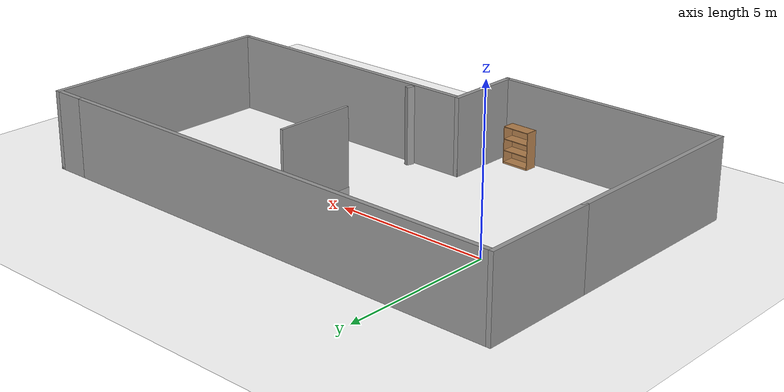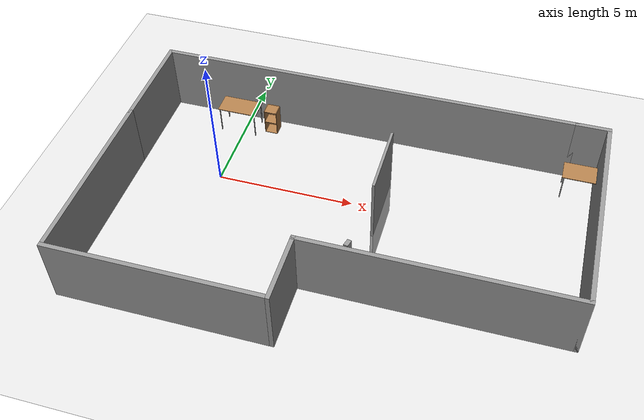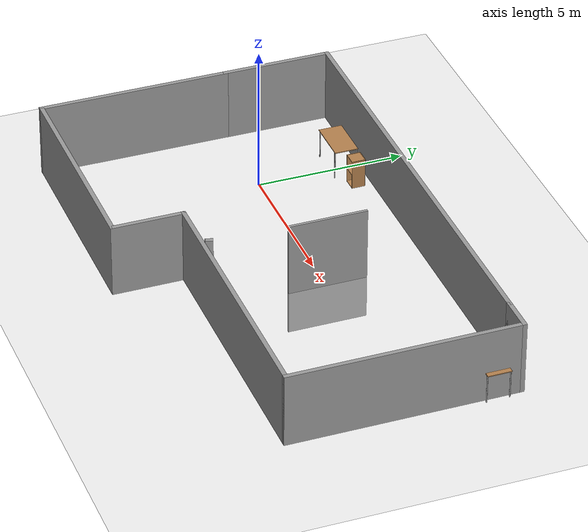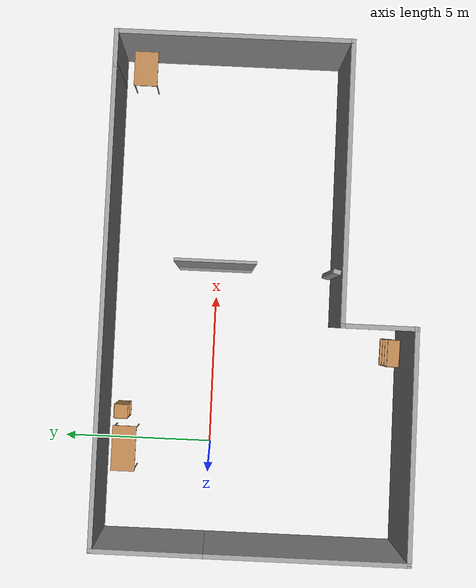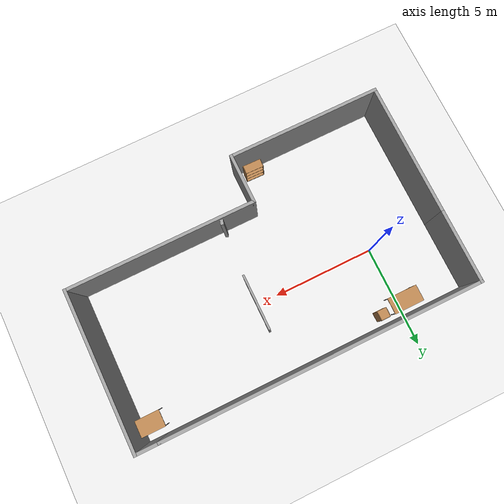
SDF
<sdf version="1.7">
 <world name="default">
  <light name="sun" type="directional">
   <pose>0 0 10 0 -0 0</pose>
   <diffuse>0.8 0.8 0.8 1</diffuse>
   <specular>0.2 0.2 0.2 1</specular>
   <attenuation>
    <range>1000</range>
    <constant>0.9</constant>
    <linear>0.01</linear>
    <quadratic>0.001</quadratic>
   </attenuation>
   <direction>-0.5 0.1 -0.9</direction>
   <spot><inner_angle>0</inner_angle><outer_angle>0</outer_angle><falloff>0</falloff></spot>
  </light>
  <model name="ground_plane">
   <static>1</static>
   <link name="link">
    <collision name="collision">
     <geometry><plane><normal>0 0 1</normal><size>100 100</size></plane></geometry>
     <surface><friction><ode><mu>100</mu><mu2>50</mu2></ode></friction></surface>
    </collision>
    <visual name="visual">
     <cast_shadows>0</cast_shadows>
     <geometry><plane><normal>0 0 1</normal><size>100 100</size></plane></geometry>
     <material>
      <script><uri>file://media/materials/scripts/gazebo.material</uri><name>Gazebo/Grey</name></script>
     </material>
    </visual>
   </link>
  </model>
  <gravity>0 0 -9.8</gravity>
  <magnetic_field>6e-06 2.3e-05 -4.2e-05</magnetic_field>
  <atmosphere type="adiabatic"/>
  <physics type="ode">
   <max_step_size>0.001</max_step_size>
   <real_time_factor>1</real_time_factor>
   <real_time_update_rate>1000</real_time_update_rate>
  </physics>
  <scene><ambient>0.4 0.4 0.4 1</ambient><background>0.7 0.7 0.7 1</background><shadows>1</shadows></scene>
  <audio><device>default</device></audio>
  <spherical_coordinates>
   <surface_model>EARTH_WGS84</surface_model>
   <latitude_deg>0</latitude_deg>
   <longitude_deg>0</longitude_deg>
   <elevation>0</elevation>
   <heading_deg>0</heading_deg>
  </spherical_coordinates>
  <model name="table">
   <static>1</static>
   <link name="link">
    <collision name="surface">
     <pose>0 0 1 0 -0 0</pose>
     <geometry><box><size>1.5 0.8 0.03</size></box></geometry>
     <surface><friction><ode><mu>0.6</mu><mu2>0.6</mu2></ode></friction></surface>
    </collision>
    <visual name="visual1">
     <pose>0 0 1 0 -0 0</pose>
     <geometry><box><size>1.5 0.8 0.03</size></box></geometry>
     <material>
      <script><uri>file://media/materials/scripts/gazebo.material</uri><name>Gazebo/Wood</name></script>
     </material>
    </visual>
    <collision name="front_left_leg">
     <pose>0.68 0.38 0.5 0 -0 0</pose>
     <geometry><cylinder><radius>0.02</radius><length>1</length></cylinder></geometry>
    </collision>
    <visual name="front_left_leg">
     <pose>0.68 0.38 0.5 0 -0 0</pose>
     <geometry><cylinder><radius>0.02</radius><length>1</length></cylinder></geometry>
     <material>
      <script><uri>file://media/materials/scripts/gazebo.material</uri><name>Gazebo/Grey</name></script>
     </material>
    </visual>
    <collision name="front_right_leg">
     <pose>0.68 -0.38 0.5 0 -0 0</pose>
     <geometry><cylinder><radius>0.02</radius><length>1</length></cylinder></geometry>
    </collision>
    <visual name="front_right_leg">
     <pose>0.68 -0.38 0.5 0 -0 0</pose>
     <geometry><cylinder><radius>0.02</radius><length>1</length></cylinder></geometry>
     <material>
      <script><uri>file://media/materials/scripts/gazebo.material</uri><name>Gazebo/Grey</name></script>
     </material>
    </visual>
    <collision name="back_right_leg">
     <pose>-0.68 -0.38 0.5 0 -0 0</pose>
     <geometry><cylinder><radius>0.02</radius><length>1</length></cylinder></geometry>
    </collision>
    <visual name="back_right_leg">
     <pose>-0.68 -0.38 0.5 0 -0 0</pose>
     <geometry><cylinder><radius>0.02</radius><length>1</length></cylinder></geometry>
     <material>
      <script><uri>file://media/materials/scripts/gazebo.material</uri><name>Gazebo/Grey</name></script>
     </material>
    </visual>
    <collision name="back_left_leg">
     <pose>-0.68 0.38 0.5 0 -0 0</pose>
     <geometry><cylinder><radius>0.02</radius><length>1</length></cylinder></geometry>
    </collision>
    <visual name="back_left_leg">
     <pose>-0.68 0.38 0.5 0 -0 0</pose>
     <geometry><cylinder><radius>0.02</radius><length>1</length></cylinder></geometry>
     <material>
      <script><uri>file://media/materials/scripts/gazebo.material</uri><name>Gazebo/Grey</name></script>
     </material>
    </visual>
   </link>
   <pose>-0.208377 2.85847 0 0 -0 0</pose>
  </model>
  <model name="table_1">
   <static>1</static>
   <link name="link">
    <collision name="surface">
     <pose>0 0 1 0 -0 0</pose>
     <geometry><box><size>1.5 0.8 0.03</size></box></geometry>
     <surface><friction><ode><mu>0.6</mu><mu2>0.6</mu2></ode></friction></surface>
    </collision>
    <visual name="visual1">
     <pose>0 0 1 0 -0 0</pose>
     <geometry><box><size>1.5 0.8 0.03</size></box></geometry>
     <material>
      <script><uri>file://media/materials/scripts/gazebo.material</uri><name>Gazebo/Wood</name></script>
     </material>
    </visual>
    <collision name="front_left_leg">
     <pose>0.68 0.38 0.5 0 -0 0</pose>
     <geometry><cylinder><radius>0.02</radius><length>1</length></cylinder></geometry>
    </collision>
    <visual name="front_left_leg">
     <pose>0.68 0.38 0.5 0 -0 0</pose>
     <geometry><cylinder><radius>0.02</radius><length>1</length></cylinder></geometry>
     <material>
      <script><uri>file://media/materials/scripts/gazebo.material</uri><name>Gazebo/Grey</name></script>
     </material>
    </visual>
    <collision name="front_right_leg">
     <pose>0.68 -0.38 0.5 0 -0 0</pose>
     <geometry><cylinder><radius>0.02</radius><length>1</length></cylinder></geometry>
    </collision>
    <visual name="front_right_leg">
     <pose>0.68 -0.38 0.5 0 -0 0</pose>
     <geometry><cylinder><radius>0.02</radius><length>1</length></cylinder></geometry>
     <material>
      <script><uri>file://media/materials/scripts/gazebo.material</uri><name>Gazebo/Grey</name></script>
     </material>
    </visual>
    <collision name="back_right_leg">
     <pose>-0.68 -0.38 0.5 0 -0 0</pose>
     <geometry><cylinder><radius>0.02</radius><length>1</length></cylinder></geometry>
    </collision>
    <visual name="back_right_leg">
     <pose>-0.68 -0.38 0.5 0 -0 0</pose>
     <geometry><cylinder><radius>0.02</radius><length>1</length></cylinder></geometry>
     <material>
      <script><uri>file://media/materials/scripts/gazebo.material</uri><name>Gazebo/Grey</name></script>
     </material>
    </visual>
    <collision name="back_left_leg">
     <pose>-0.68 0.38 0.5 0 -0 0</pose>
     <geometry><cylinder><radius>0.02</radius><length>1</length></cylinder></geometry>
    </collision>
    <visual name="back_left_leg">
     <pose>-0.68 0.38 0.5 0 -0 0</pose>
     <geometry><cylinder><radius>0.02</radius><length>1</length></cylinder></geometry>
     <material>
      <script><uri>file://media/materials/scripts/gazebo.material</uri><name>Gazebo/Grey</name></script>
     </material>
    </visual>
   </link>
   <pose>12.7962 2.74013 0 0 -0 0</pose>
  </model>
  <model name="bookshelf">
   <static>1</static>
   <link name="link">
    <inertial><mass>1</mass></inertial>
    <collision name="back">
     <pose>0 0.005 0.6 0 -0 0</pose>
     <geometry><box><size>0.9 0.01 1.2</size></box></geometry>
    </collision>
    <visual name="visual1">
     <pose>0 0.005 0.6 0 -0 0</pose>
     <geometry><box><size>0.9 0.01 1.2</size></box></geometry>
     <material>
      <script><uri>file://media/materials/scripts/gazebo.material</uri><name>Gazebo/Wood</name></script>
     </material>
    </visual>
    <collision name="left_side">
     <pose>0.45 -0.195 0.6 0 -0 0</pose>
     <geometry><box><size>0.02 0.4 1.2</size></box></geometry>
    </collision>
    <visual name="visual2">
     <pose>0.45 -0.195 0.6 0 -0 0</pose>
     <geometry><box><size>0.02 0.4 1.2</size></box></geometry>
     <material>
      <script><uri>file://media/materials/scripts/gazebo.material</uri><name>Gazebo/Wood</name></script>
     </material>
    </visual>
    <collision name="right_side">
     <pose>-0.45 -0.195 0.6 0 -0 0</pose>
     <geometry><box><size>0.02 0.4 1.2</size></box></geometry>
    </collision>
    <visual name="visual3">
     <pose>-0.45 -0.195 0.6 0 -0 0</pose>
     <geometry><box><size>0.02 0.4 1.2</size></box></geometry>
     <material>
      <script><uri>file://media/materials/scripts/gazebo.material</uri><name>Gazebo/Wood</name></script>
     </material>
    </visual>
    <collision name="bottom">
     <pose>0 -0.195 0.03 0 -0 0</pose>
     <geometry><box><size>0.88 0.4 0.06</size></box></geometry>
    </collision>
    <visual name="visual4">
     <pose>0 -0.195 0.03 0 -0 0</pose>
     <geometry><box><size>0.88 0.4 0.06</size></box></geometry>
     <material>
      <script><uri>file://media/materials/scripts/gazebo.material</uri><name>Gazebo/Wood</name></script>
     </material>
    </visual>
    <collision name="top">
     <pose>0 -0.195 1.19 0 -0 0</pose>
     <geometry><box><size>0.88 0.4 0.02</size></box></geometry>
    </collision>
    <visual name="visual5">
     <pose>0 -0.195 1.19 0 -0 0</pose>
     <geometry><box><size>0.88 0.4 0.02</size></box></geometry>
     <material>
      <script><uri>file://media/materials/scripts/gazebo.material</uri><name>Gazebo/Wood</name></script>
     </material>
    </visual>
    <collision name="low_shelf">
     <pose>0 -0.195 0.43 0 -0 0</pose>
     <geometry><box><size>0.88 0.4 0.02</size></box></geometry>
    </collision>
    <visual name="visual6">
     <pose>0 -0.195 0.43 0 -0 0</pose>
     <geometry><box><size>0.88 0.4 0.02</size></box></geometry>
     <material>
      <script><uri>file://media/materials/scripts/gazebo.material</uri><name>Gazebo/Wood</name></script>
     </material>
    </visual>
    <collision name="high_shelf">
     <pose>0 -0.195 0.8 0 -0 0</pose>
     <geometry><box><size>0.88 0.4 0.02</size></box></geometry>
    </collision>
    <visual name="visual7">
     <pose>0 -0.195 0.8 0 -0 0</pose>
     <geometry><box><size>0.88 0.4 0.02</size></box></geometry>
     <material>
      <script><uri>file://media/materials/scripts/gazebo.material</uri><name>Gazebo/Wood</name></script>
     </material>
    </visual>
   </link>
   <pose>3.35475 -6.16345 0 0 -0 3.11844</pose>
  </model>
  <model name="cabinet">
   <static>1</static>
   <link name="cabinet_bottom_plate">
    <inertial>
     <pose>0 0 -1 0 -0 0</pose>
     <inertia><ixx>2.05</ixx><ixy>0</ixy><ixz>0</ixz><iyy>2.05</iyy><iyz>0</iyz><izz>2.05</izz></inertia>
     <mass>25</mass>
    </inertial>
    <collision name="cabinet_bottom_plate_geom">
     <pose>0 0 0.01 0 -0 0</pose>
     <geometry><box><size>0.45 0.45 0.02</size></box></geometry>
    </collision>
    <visual name="cabinet_bottom_plate_geom_visual">
     <pose>0 0 0.01 0 -0 0</pose>
     <geometry><box><size>0.45 0.45 0.02</size></box></geometry>
     <material>
      <script><uri>file://media/materials/scripts/gazebo.material</uri><name>Gazebo/Wood</name></script>
     </material>
    </visual>
    <collision name="cabinet_bottom_plate_geom_cabinet_back_plate">
     <pose>0.235 0 0.51 0 -0 0</pose>
     <geometry><box><size>0.02 0.45 1.02</size></box></geometry>
    </collision>
    <visual name="cabinet_bottom_plate_geom_cabinet_back_plate_visual">
     <pose>0.235 0 0.51 0 -0 0</pose>
     <geometry><box><size>0.02 0.45 1.02</size></box></geometry>
     <material>
      <script><uri>file://media/materials/scripts/gazebo.material</uri><name>Gazebo/Wood</name></script>
     </material>
    </visual>
    <collision name="cabinet_bottom_plate_geom_cabinet_left_plate">
     <pose>0 0.235 0.51 0 -0 0</pose>
     <geometry><box><size>0.45 0.02 1.02</size></box></geometry>
    </collision>
    <visual name="cabinet_bottom_plate_geom_cabinet_left_plate_visual">
     <pose>0 0.235 0.51 0 -0 0</pose>
     <geometry><box><size>0.45 0.02 1.02</size></box></geometry>
     <material>
      <script><uri>file://media/materials/scripts/gazebo.material</uri><name>Gazebo/Wood</name></script>
     </material>
    </visual>
    <collision name="cabinet_bottom_plate_geom_cabinet_middle_plate">
     <pose>0 0 0.51 0 -0 0</pose>
     <geometry><box><size>0.45 0.45 0.02</size></box></geometry>
    </collision>
    <visual name="cabinet_bottom_plate_geom_cabinet_middle_plate_visual">
     <pose>0 0 0.51 0 -0 0</pose>
     <geometry><box><size>0.45 0.45 0.02</size></box></geometry>
     <material>
      <script><uri>file://media/materials/scripts/gazebo.material</uri><name>Gazebo/Wood</name></script>
     </material>
    </visual>
    <collision name="cabinet_bottom_plate_geom_cabinet_right_plate">
     <pose>0 -0.235 0.51 0 -0 0</pose>
     <geometry><box><size>0.45 0.02 1.02</size></box></geometry>
    </collision>
    <visual name="cabinet_bottom_plate_geom_cabinet_right_plate_visual">
     <pose>0 -0.235 0.51 0 -0 0</pose>
     <geometry><box><size>0.45 0.02 1.02</size></box></geometry>
     <material>
      <script><uri>file://media/materials/scripts/gazebo.material</uri><name>Gazebo/Wood</name></script>
     </material>
    </visual>
    <collision name="cabinet_bottom_plate_geom_cabinet_top_plate">
     <pose>0 0 1.01 0 -0 0</pose>
     <geometry><box><size>0.45 0.45 0.02</size></box></geometry>
    </collision>
    <visual name="cabinet_bottom_plate_geom_cabinet_top_plate_visual">
     <pose>0 0 1.01 0 -0 0</pose>
     <geometry><box><size>0.45 0.45 0.02</size></box></geometry>
     <material>
      <script><uri>file://media/materials/scripts/gazebo.material</uri><name>Gazebo/Wood</name></script>
     </material>
    </visual>
   </link>
   <pose>1.01782 3.00182 0 0 -0 1.57288</pose>
  </model>
  <model name="wall_for_furnished_office_wide_door">
   <link name="Wall_15">
    <pose>-8.225 -1.8 0 0 0 -1.5708</pose>
    <visual name="Wall_15_Visual">
     <pose>0 0 1.25 0 -0 0</pose>
     <geometry><box><size>6.5 0.15 2.5</size></box></geometry>
     <material>
      <script><uri>file://media/materials/scripts/gazebo.material</uri><name>Gazebo/Grey</name></script>
      <ambient>1 1 1 1</ambient>
      <shader type="pixel"/>
     </material>
     <meta><layer>0</layer></meta>
    </visual>
    <collision name="Wall_15_Collision">
     <pose>0 0 1.25 0 -0 0</pose>
     <geometry><box><size>6.5 0.15 2.5</size></box></geometry>
     <surface>
      <friction>
       <ode><mu>1</mu><mu2>1</mu2><fdir1>0 0 0</fdir1><slip1>0</slip1><slip2>0</slip2></ode>
       <torsional>
        <coefficient>1</coefficient>
        <patch_radius>0</patch_radius>
        <surface_radius>0</surface_radius>
        <use_patch_radius>1</use_patch_radius>
        <ode><slip>0</slip></ode>
       </torsional>
      </friction>
      <bounce><restitution_coefficient>0</restitution_coefficient><threshold>1e+06</threshold></bounce>
      <contact>
       <collide_without_contact>0</collide_without_contact>
       <collide_without_contact_bitmask>1</collide_without_contact_bitmask>
       <collide_bitmask>1</collide_bitmask>
       <ode>
        <soft_cfm>0</soft_cfm>
        <soft_erp>0.2</soft_erp>
        <kp>1e+13</kp>
        <kd>1</kd>
        <max_vel>0.01</max_vel>
        <min_depth>0</min_depth>
       </ode>
       <bullet>
        <split_impulse>1</split_impulse>
        <split_impulse_penetration_threshold>-0.01</split_impulse_penetration_threshold>
        <soft_cfm>0</soft_cfm>
        <soft_erp>0.2</soft_erp>
        <kp>1e+13</kp>
        <kd>1</kd>
       </bullet>
      </contact>
     </surface>
    </collision>
   </link>
   <link name="Wall_16">
    <pose>-4.55 -4.975 0 0 -0 0</pose>
    <visual name="Wall_16_Visual">
     <pose>0 0 1.25 0 -0 0</pose>
     <geometry><box><size>7.5 0.15 2.5</size></box></geometry>
     <material>
      <script><uri>file://media/materials/scripts/gazebo.material</uri><name>Gazebo/Grey</name></script>
      <ambient>1 1 1 1</ambient>
      <shader type="pixel"/>
     </material>
     <meta><layer>0</layer></meta>
    </visual>
    <collision name="Wall_16_Collision">
     <pose>0 0 1.25 0 -0 0</pose>
     <geometry><box><size>7.5 0.15 2.5</size></box></geometry>
     <surface>
      <friction>
       <ode><mu>1</mu><mu2>1</mu2><fdir1>0 0 0</fdir1><slip1>0</slip1><slip2>0</slip2></ode>
       <torsional>
        <coefficient>1</coefficient>
        <patch_radius>0</patch_radius>
        <surface_radius>0</surface_radius>
        <use_patch_radius>1</use_patch_radius>
        <ode><slip>0</slip></ode>
       </torsional>
      </friction>
      <bounce><restitution_coefficient>0</restitution_coefficient><threshold>1e+06</threshold></bounce>
      <contact>
       <collide_without_contact>0</collide_without_contact>
       <collide_without_contact_bitmask>1</collide_without_contact_bitmask>
       <collide_bitmask>1</collide_bitmask>
       <ode>
        <soft_cfm>0</soft_cfm>
        <soft_erp>0.2</soft_erp>
        <kp>1e+13</kp>
        <kd>1</kd>
        <max_vel>0.01</max_vel>
        <min_depth>0</min_depth>
       </ode>
       <bullet>
        <split_impulse>1</split_impulse>
        <split_impulse_penetration_threshold>-0.01</split_impulse_penetration_threshold>
        <soft_cfm>0</soft_cfm>
        <soft_erp>0.2</soft_erp>
        <kp>1e+13</kp>
        <kd>1</kd>
       </bullet>
      </contact>
     </surface>
    </collision>
   </link>
   <link name="Wall_17">
    <pose>-0.875 -3.8 0 0 -0 1.5708</pose>
    <visual name="Wall_17_Visual">
     <pose>0 0 1.25 0 -0 0</pose>
     <geometry><box><size>2.5 0.15 2.5</size></box></geometry>
     <material>
      <script><uri>file://media/materials/scripts/gazebo.material</uri><name>Gazebo/Grey</name></script>
      <ambient>1 1 1 1</ambient>
      <shader type="pixel"/>
     </material>
     <meta><layer>0</layer></meta>
    </visual>
    <collision name="Wall_17_Collision">
     <pose>0 0 1.25 0 -0 0</pose>
     <geometry><box><size>2.5 0.15 2.5</size></box></geometry>
     <surface>
      <friction>
       <ode><mu>1</mu><mu2>1</mu2><fdir1>0 0 0</fdir1><slip1>0</slip1><slip2>0</slip2></ode>
       <torsional>
        <coefficient>1</coefficient>
        <patch_radius>0</patch_radius>
        <surface_radius>0</surface_radius>
        <use_patch_radius>1</use_patch_radius>
        <ode><slip>0</slip></ode>
       </torsional>
      </friction>
      <bounce><restitution_coefficient>0</restitution_coefficient><threshold>1e+06</threshold></bounce>
      <contact>
       <collide_without_contact>0</collide_without_contact>
       <collide_without_contact_bitmask>1</collide_without_contact_bitmask>
       <collide_bitmask>1</collide_bitmask>
       <ode>
        <soft_cfm>0</soft_cfm>
        <soft_erp>0.2</soft_erp>
        <kp>1e+13</kp>
        <kd>1</kd>
        <max_vel>0.01</max_vel>
        <min_depth>0</min_depth>
       </ode>
       <bullet>
        <split_impulse>1</split_impulse>
        <split_impulse_penetration_threshold>-0.01</split_impulse_penetration_threshold>
        <soft_cfm>0</soft_cfm>
        <soft_erp>0.2</soft_erp>
        <kp>1e+13</kp>
        <kd>1</kd>
       </bullet>
      </contact>
     </surface>
    </collision>
   </link>
   <link name="Wall_18">
    <pose>3.675 -2.625 0 0 -0 0</pose>
    <visual name="Wall_18_Visual">
     <pose>0 0 1.25 0 -0 0</pose>
     <geometry><box><size>9.25 0.15 2.5</size></box></geometry>
     <material>
      <script><uri>file://media/materials/scripts/gazebo.material</uri><name>Gazebo/Grey</name></script>
      <ambient>1 1 1 1</ambient>
      <shader type="pixel"/>
     </material>
     <meta><layer>0</layer></meta>
    </visual>
    <collision name="Wall_18_Collision">
     <pose>0 0 1.25 0 -0 0</pose>
     <geometry><box><size>9.25 0.15 2.5</size></box></geometry>
     <surface>
      <friction>
       <ode><mu>1</mu><mu2>1</mu2><fdir1>0 0 0</fdir1><slip1>0</slip1><slip2>0</slip2></ode>
       <torsional>
        <coefficient>1</coefficient>
        <patch_radius>0</patch_radius>
        <surface_radius>0</surface_radius>
        <use_patch_radius>1</use_patch_radius>
        <ode><slip>0</slip></ode>
       </torsional>
      </friction>
      <bounce><restitution_coefficient>0</restitution_coefficient><threshold>1e+06</threshold></bounce>
      <contact>
       <collide_without_contact>0</collide_without_contact>
       <collide_without_contact_bitmask>1</collide_without_contact_bitmask>
       <collide_bitmask>1</collide_bitmask>
       <ode>
        <soft_cfm>0</soft_cfm>
        <soft_erp>0.2</soft_erp>
        <kp>1e+13</kp>
        <kd>1</kd>
        <max_vel>0.01</max_vel>
        <min_depth>0</min_depth>
       </ode>
       <bullet>
        <split_impulse>1</split_impulse>
        <split_impulse_penetration_threshold>-0.01</split_impulse_penetration_threshold>
        <soft_cfm>0</soft_cfm>
        <soft_erp>0.2</soft_erp>
        <kp>1e+13</kp>
        <kd>1</kd>
       </bullet>
      </contact>
     </surface>
    </collision>
   </link>
   <link name="Wall_19">
    <pose>8.225 1.175 0 0 -0 1.5708</pose>
    <visual name="Wall_19_Visual">
     <pose>0 0 1.25 0 -0 0</pose>
     <geometry><box><size>7.75 0.15 2.5</size></box></geometry>
     <material>
      <script><uri>file://media/materials/scripts/gazebo.material</uri><name>Gazebo/Grey</name></script>
      <ambient>1 1 1 1</ambient>
      <shader type="pixel"/>
     </material>
     <meta><layer>0</layer></meta>
    </visual>
    <collision name="Wall_19_Collision">
     <pose>0 0 1.25 0 -0 0</pose>
     <geometry><box><size>7.75 0.15 2.5</size></box></geometry>
     <surface>
      <friction>
       <ode><mu>1</mu><mu2>1</mu2><fdir1>0 0 0</fdir1><slip1>0</slip1><slip2>0</slip2></ode>
       <torsional>
        <coefficient>1</coefficient>
        <patch_radius>0</patch_radius>
        <surface_radius>0</surface_radius>
        <use_patch_radius>1</use_patch_radius>
        <ode><slip>0</slip></ode>
       </torsional>
      </friction>
      <bounce><restitution_coefficient>0</restitution_coefficient><threshold>1e+06</threshold></bounce>
      <contact>
       <collide_without_contact>0</collide_without_contact>
       <collide_without_contact_bitmask>1</collide_without_contact_bitmask>
       <collide_bitmask>1</collide_bitmask>
       <ode>
        <soft_cfm>0</soft_cfm>
        <soft_erp>0.2</soft_erp>
        <kp>1e+13</kp>
        <kd>1</kd>
        <max_vel>0.01</max_vel>
        <min_depth>0</min_depth>
       </ode>
       <bullet>
        <split_impulse>1</split_impulse>
        <split_impulse_penetration_threshold>-0.01</split_impulse_penetration_threshold>
        <soft_cfm>0</soft_cfm>
        <soft_erp>0.2</soft_erp>
        <kp>1e+13</kp>
        <kd>1</kd>
       </bullet>
      </contact>
     </surface>
    </collision>
   </link>
   <link name="Wall_23">
    <pose>0.815144 -2.38231 0 0 -0 1.309</pose>
    <visual name="Wall_23_Visual">
     <pose>0 0 1.25 0 -0 0</pose>
     <geometry><box><size>0.25 0.15 2.5</size></box></geometry>
     <material>
      <script><uri>file://media/materials/scripts/gazebo.material</uri><name>Gazebo/Grey</name></script>
      <ambient>1 1 1 1</ambient>
      <shader type="pixel"/>
     </material>
     <meta><layer>0</layer></meta>
    </visual>
    <collision name="Wall_23_Collision">
     <pose>0 0 1.25 0 -0 0</pose>
     <geometry><box><size>0.25 0.15 2.5</size></box></geometry>
     <surface>
      <friction>
       <ode><mu>1</mu><mu2>1</mu2><fdir1>0 0 0</fdir1><slip1>0</slip1><slip2>0</slip2></ode>
       <torsional>
        <coefficient>1</coefficient>
        <patch_radius>0</patch_radius>
        <surface_radius>0</surface_radius>
        <use_patch_radius>1</use_patch_radius>
        <ode><slip>0</slip></ode>
       </torsional>
      </friction>
      <bounce><restitution_coefficient>0</restitution_coefficient><threshold>1e+06</threshold></bounce>
      <contact>
       <collide_without_contact>0</collide_without_contact>
       <collide_without_contact_bitmask>1</collide_without_contact_bitmask>
       <collide_bitmask>1</collide_bitmask>
       <ode>
        <soft_cfm>0</soft_cfm>
        <soft_erp>0.2</soft_erp>
        <kp>1e+13</kp>
        <kd>1</kd>
        <max_vel>0.01</max_vel>
        <min_depth>0</min_depth>
       </ode>
       <bullet>
        <split_impulse>1</split_impulse>
        <split_impulse_penetration_threshold>-0.01</split_impulse_penetration_threshold>
        <soft_cfm>0</soft_cfm>
        <soft_erp>0.2</soft_erp>
        <kp>1e+13</kp>
        <kd>1</kd>
       </bullet>
      </contact>
     </surface>
    </collision>
   </link>
   <link name="Wall_5">
    <pose>-8.225 3.175 0 0 -0 1.5708</pose>
    <visual name="Wall_5_Visual">
     <pose>0 0 1.25 0 -0 0</pose>
     <geometry><box><size>3.75 0.15 2.5</size></box></geometry>
     <material>
      <script><uri>file://media/materials/scripts/gazebo.material</uri><name>Gazebo/Grey</name></script>
      <ambient>1 1 1 1</ambient>
      <shader type="pixel"/>
     </material>
     <meta><layer>0</layer></meta>
    </visual>
    <collision name="Wall_5_Collision">
     <pose>0 0 1.25 0 -0 0</pose>
     <geometry><box><size>3.75 0.15 2.5</size></box></geometry>
     <surface>
      <friction>
       <ode><mu>1</mu><mu2>1</mu2><fdir1>0 0 0</fdir1><slip1>0</slip1><slip2>0</slip2></ode>
       <torsional>
        <coefficient>1</coefficient>
        <patch_radius>0</patch_radius>
        <surface_radius>0</surface_radius>
        <use_patch_radius>1</use_patch_radius>
        <ode><slip>0</slip></ode>
       </torsional>
      </friction>
      <bounce><restitution_coefficient>0</restitution_coefficient><threshold>1e+06</threshold></bounce>
      <contact>
       <collide_without_contact>0</collide_without_contact>
       <collide_without_contact_bitmask>1</collide_without_contact_bitmask>
       <collide_bitmask>1</collide_bitmask>
       <ode>
        <soft_cfm>0</soft_cfm>
        <soft_erp>0.2</soft_erp>
        <kp>1e+13</kp>
        <kd>1</kd>
        <max_vel>0.01</max_vel>
        <min_depth>0</min_depth>
       </ode>
       <bullet>
        <split_impulse>1</split_impulse>
        <split_impulse_penetration_threshold>-0.01</split_impulse_penetration_threshold>
        <soft_cfm>0</soft_cfm>
        <soft_erp>0.2</soft_erp>
        <kp>1e+13</kp>
        <kd>1</kd>
       </bullet>
      </contact>
     </surface>
    </collision>
   </link>
   <link name="Wall_7">
    <pose>-0.55 4.975 0 0 -0 0</pose>
    <visual name="Wall_7_Visual">
     <pose>0 0 1.25 0 -0 0</pose>
     <geometry><box><size>15.5 0.15 2.5</size></box></geometry>
     <material>
      <script><uri>file://media/materials/scripts/gazebo.material</uri><name>Gazebo/Grey</name></script>
      <ambient>1 1 1 1</ambient>
      <shader type="pixel"/>
     </material>
     <meta><layer>0</layer></meta>
    </visual>
    <collision name="Wall_7_Collision">
     <pose>0 0 1.25 0 -0 0</pose>
     <geometry><box><size>15.5 0.15 2.5</size></box></geometry>
     <surface>
      <friction>
       <ode><mu>1</mu><mu2>1</mu2><fdir1>0 0 0</fdir1><slip1>0</slip1><slip2>0</slip2></ode>
       <torsional>
        <coefficient>1</coefficient>
        <patch_radius>0</patch_radius>
        <surface_radius>0</surface_radius>
        <use_patch_radius>1</use_patch_radius>
        <ode><slip>0</slip></ode>
       </torsional>
      </friction>
      <bounce><restitution_coefficient>0</restitution_coefficient><threshold>1e+06</threshold></bounce>
      <contact>
       <collide_without_contact>0</collide_without_contact>
       <collide_without_contact_bitmask>1</collide_without_contact_bitmask>
       <collide_bitmask>1</collide_bitmask>
       <ode>
        <soft_cfm>0</soft_cfm>
        <soft_erp>0.2</soft_erp>
        <kp>1e+13</kp>
        <kd>1</kd>
        <max_vel>0.01</max_vel>
        <min_depth>0</min_depth>
       </ode>
       <bullet>
        <split_impulse>1</split_impulse>
        <split_impulse_penetration_threshold>-0.01</split_impulse_penetration_threshold>
        <soft_cfm>0</soft_cfm>
        <soft_erp>0.2</soft_erp>
        <kp>1e+13</kp>
        <kd>1</kd>
       </bullet>
      </contact>
     </surface>
    </collision>
   </link>
   <link name="Wall_9">
    <pose>7.675 4.975 0 0 -0 0</pose>
    <visual name="Wall_9_Visual">
     <pose>0 0 1.25 0 -0 0</pose>
     <geometry><box><size>1.25 0.15 2.5</size></box></geometry>
     <material>
      <script><uri>file://media/materials/scripts/gazebo.material</uri><name>Gazebo/Grey</name></script>
      <ambient>1 1 1 1</ambient>
      <shader type="pixel"/>
     </material>
     <meta><layer>0</layer></meta>
    </visual>
    <collision name="Wall_9_Collision">
     <pose>0 0 1.25 0 -0 0</pose>
     <geometry><box><size>1.25 0.15 2.5</size></box></geometry>
     <surface>
      <friction>
       <ode><mu>1</mu><mu2>1</mu2><fdir1>0 0 0</fdir1><slip1>0</slip1><slip2>0</slip2></ode>
       <torsional>
        <coefficient>1</coefficient>
        <patch_radius>0</patch_radius>
        <surface_radius>0</surface_radius>
        <use_patch_radius>1</use_patch_radius>
        <ode><slip>0</slip></ode>
       </torsional>
      </friction>
      <bounce><restitution_coefficient>0</restitution_coefficient><threshold>1e+06</threshold></bounce>
      <contact>
       <collide_without_contact>0</collide_without_contact>
       <collide_without_contact_bitmask>1</collide_without_contact_bitmask>
       <collide_bitmask>1</collide_bitmask>
       <ode>
        <soft_cfm>0</soft_cfm>
        <soft_erp>0.2</soft_erp>
        <kp>1e+13</kp>
        <kd>1</kd>
        <max_vel>0.01</max_vel>
        <min_depth>0</min_depth>
       </ode>
       <bullet>
        <split_impulse>1</split_impulse>
        <split_impulse_penetration_threshold>-0.01</split_impulse_penetration_threshold>
        <soft_cfm>0</soft_cfm>
        <soft_erp>0.2</soft_erp>
        <kp>1e+13</kp>
        <kd>1</kd>
       </bullet>
      </contact>
     </surface>
    </collision>
   </link>
   <link name="link_2">
    <inertial>
     <mass>1.00462</mass>
     <inertia><ixx>1.92735</ixx><ixy>0</ixy><ixz>0</ixz><iyy>1.34478</iyy><iyz>0</iyz><izz>0.584076</izz></inertia>
    </inertial>
    <pose>0.983449 1.4817 0.5 0 -0 0</pose>
    <visual name="visual">
     <geometry><box><size>0.094984 2.63963 4.00675</size></box></geometry>
     <material>
      <lighting>1</lighting>
      <script><uri>file://media/materials/scripts/gazebo.material</uri><name>Gazebo/Grey</name></script>
      <shader type="pixel"/>
     </material>
    </visual>
    <collision name="collision">
     <geometry><box><size>0.094984 2.63963 4.00675</size></box></geometry>
     <surface>
      <friction>
       <ode><mu>1</mu><mu2>1</mu2><fdir1>0 0 0</fdir1><slip1>0</slip1><slip2>0</slip2></ode>
       <torsional>
        <coefficient>1</coefficient>
        <patch_radius>0</patch_radius>
        <surface_radius>0</surface_radius>
        <use_patch_radius>1</use_patch_radius>
        <ode><slip>0</slip></ode>
       </torsional>
      </friction>
      <bounce><restitution_coefficient>0</restitution_coefficient><threshold>1e+06</threshold></bounce>
      <contact>
       <collide_without_contact>0</collide_without_contact>
       <collide_without_contact_bitmask>1</collide_without_contact_bitmask>
       <collide_bitmask>1</collide_bitmask>
       <ode>
        <soft_cfm>0</soft_cfm>
        <soft_erp>0.2</soft_erp>
        <kp>1e+13</kp>
        <kd>1</kd>
        <max_vel>0.01</max_vel>
        <min_depth>0</min_depth>
       </ode>
       <bullet>
        <split_impulse>1</split_impulse>
        <split_impulse_penetration_threshold>-0.01</split_impulse_penetration_threshold>
        <soft_cfm>0</soft_cfm>
        <soft_erp>0.2</soft_erp>
        <kp>1e+13</kp>
        <kd>1</kd>
       </bullet>
      </contact>
     </surface>
    </collision>
   </link>
   <static>1</static>
   <pose>5.075 -1.405 0 0 -0 0</pose>
  </model>
 </world>
</sdf>
